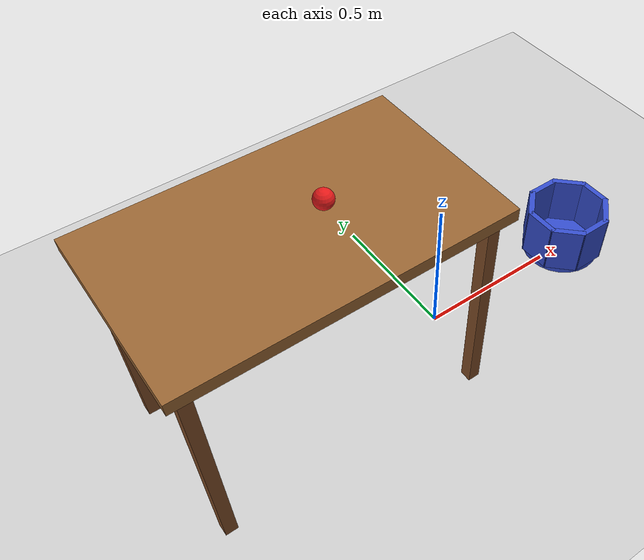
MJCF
<mujoco model="ball_off_table_into_bucket">
  <option timestep="0.002"/>
  <worldbody>
    <light name="sun" pos="0 0 3" dir="0 0 -1" diffuse="0.8 0.8 0.8"/>
    <geom name="floor" type="plane" size="3 3 0.1" rgba="0.8 0.8 0.8 1"/>

    <body name="table" pos="0 0 0">
      <geom name="table_top" type="box" pos="-0.5 0 0.73" size="0.5 0.3 0.02" rgba="0.6 0.4 0.2 1"/>
      <geom name="table_leg1" type="box" pos="-0.95 0.25 0.355" size="0.02 0.02 0.355" rgba="0.5 0.3 0.15 1"/>
      <geom name="table_leg2" type="box" pos="-0.95 -0.25 0.355" size="0.02 0.02 0.355" rgba="0.5 0.3 0.15 1"/>
      <geom name="table_leg3" type="box" pos="-0.05 0.25 0.355" size="0.02 0.02 0.355" rgba="0.5 0.3 0.15 1"/>
      <geom name="table_leg4" type="box" pos="-0.05 -0.25 0.355" size="0.02 0.02 0.355" rgba="0.5 0.3 0.15 1"/>
    </body>

    <body name="ball" pos="-0.4 0 0.78">
      <freejoint name="ball_free"/>
      <geom name="ball" type="sphere" size="0.03" mass="0.05" rgba="0.9 0.1 0.1 1"/>
    </body>

    <body name="bucket" pos="0.6 0 0">
      <geom name="bucket_bottom" type="cylinder" pos="0 0 0.01" size="0.14 0.01" condim="6" friction="1 0.005 0.01" rgba="0.2 0.3 0.8 1"/>
      <geom name="bucket_wall0" type="box" pos="0.13 0 0.11" euler="0 0 0" size="0.01 0.06 0.09" rgba="0.2 0.3 0.8 1"/>
      <geom name="bucket_wall1" type="box" pos="0.0919 0.0919 0.11" euler="0 0 45" size="0.01 0.06 0.09" rgba="0.2 0.3 0.8 1"/>
      <geom name="bucket_wall2" type="box" pos="0 0.13 0.11" euler="0 0 90" size="0.01 0.06 0.09" rgba="0.2 0.3 0.8 1"/>
      <geom name="bucket_wall3" type="box" pos="-0.0919 0.0919 0.11" euler="0 0 135" size="0.01 0.06 0.09" rgba="0.2 0.3 0.8 1"/>
      <geom name="bucket_wall4" type="box" pos="-0.13 0 0.11" euler="0 0 180" size="0.01 0.06 0.09" rgba="0.2 0.3 0.8 1"/>
      <geom name="bucket_wall5" type="box" pos="-0.0919 -0.0919 0.11" euler="0 0 225" size="0.01 0.06 0.09" rgba="0.2 0.3 0.8 1"/>
      <geom name="bucket_wall6" type="box" pos="0 -0.13 0.11" euler="0 0 270" size="0.01 0.06 0.09" rgba="0.2 0.3 0.8 1"/>
      <geom name="bucket_wall7" type="box" pos="0.0919 -0.0919 0.11" euler="0 0 315" size="0.01 0.06 0.09" rgba="0.2 0.3 0.8 1"/>
    </body>
  </worldbody>

  <keyframe>
    <key name="start" qpos="-0.4 0 0.78 1 0 0 0" qvel="1.67 0 0 0 55.7 0"/>
  </keyframe>
</mujoco>
